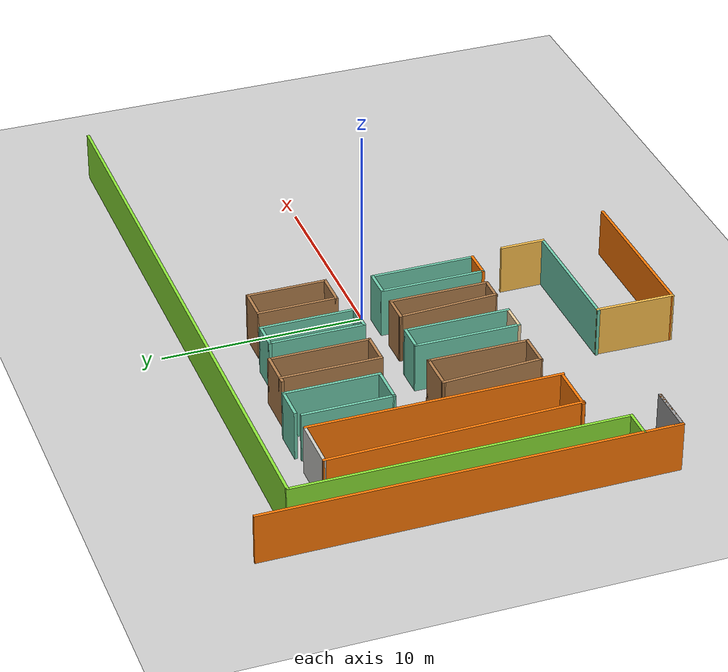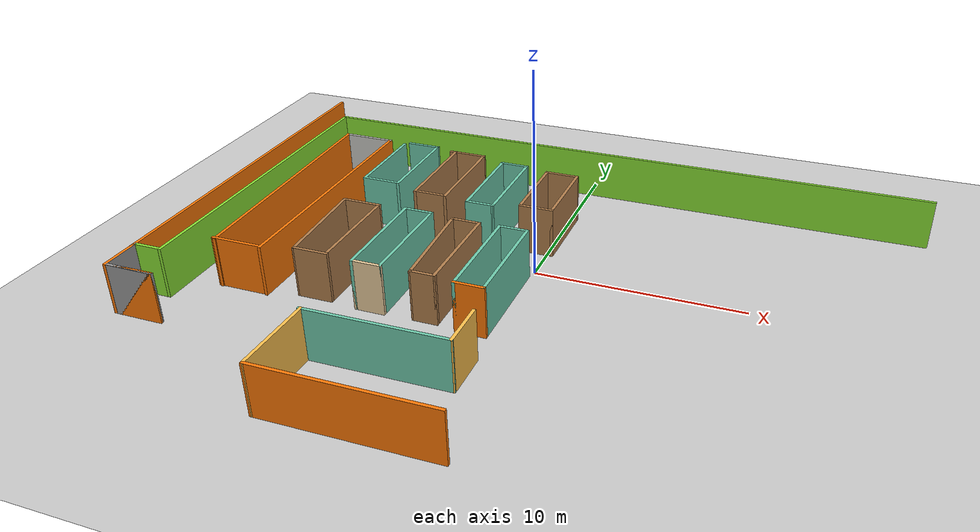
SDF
<sdf version="1.7">
 <world name="default">
  <model name="ground_plane">
   <static>1</static>
   <link name="link">
    <collision name="collision">
     <geometry><plane><normal>0 0 1</normal><size>100 100</size></plane></geometry>
     <surface>
      <contact><collide_bitmask>65535</collide_bitmask></contact>
      <friction><ode><mu>100</mu><mu2>50</mu2></ode></friction>
     </surface>
    </collision>
    <visual name="visual">
     <cast_shadows>0</cast_shadows>
     <geometry><plane><normal>0 0 1</normal><size>100 100</size></plane></geometry>
     <material>
      <script><uri>file://media/materials/scripts/gazebo.material</uri><name>Gazebo/Grey</name></script>
     </material>
    </visual>
   </link>
  </model>
  <model name="puzzle2">
   <pose>1.36187 -1.26635 0 0 -0 0</pose>
   <link name="Wall_10">
    <collision name="Wall_10_Collision">
     <geometry><box><size>32.25 0.15 2.5</size></box></geometry>
     <pose>0 0 1.25 0 -0 0</pose>
    </collision>
    <visual name="Wall_10_Visual">
     <pose>0 0 1.25 0 -0 0</pose>
     <geometry><box><size>32.25 0.15 2.5</size></box></geometry>
     <material>
      <script><uri>file://media/materials/scripts/gazebo.material</uri><name>Gazebo/Grey</name></script>
      <ambient>0.541176 0.886275 0.203922 1</ambient>
     </material>
     <meta><layer>0</layer></meta>
    </visual>
    <pose>-0.15 9.99059 0 0 -0 0</pose>
   </link>
   <link name="Wall_103">
    <collision name="Wall_103_Collision">
     <geometry><box><size>3.93847 0.15 2.5</size></box></geometry>
     <pose>0 0 1.25 0 -0 0</pose>
    </collision>
    <visual name="Wall_103_Visual">
     <pose>0 0 1.25 0 -0 0</pose>
     <geometry><box><size>3.93847 0.15 2.5</size></box></geometry>
     <material>
      <script><uri>file://media/materials/scripts/gazebo.material</uri><name>Gazebo/Grey</name></script>
      <ambient>1 0.764706 0.305882 1</ambient>
     </material>
     <meta><layer>0</layer></meta>
    </visual>
    <pose>-7.86245 -9.9954 0 0 -0 -1.58704</pose>
   </link>
   <link name="Wall_104">
    <collision name="Wall_104_Collision">
     <geometry><box><size>8.1782 0.15 2.5</size></box></geometry>
     <pose>0 0 1.25 0 -0 0</pose>
    </collision>
    <visual name="Wall_104_Visual">
     <pose>0 0 1.25 0 -0 0</pose>
     <geometry><box><size>8.1782 0.15 2.5</size></box></geometry>
     <material>
      <script><uri>file://media/materials/scripts/gazebo.material</uri><name>Gazebo/Grey</name></script>
      <ambient>0.996078 0.47451 0.0196078 1</ambient>
     </material>
     <meta><layer>0</layer></meta>
    </visual>
    <pose>-3.87921 -11.8629 0 0 -0 0.006664</pose>
   </link>
   <link name="Wall_109">
    <collision name="Wall_109_Collision">
     <geometry><box><size>2.25 0.15 2.5</size></box></geometry>
     <pose>0 0 1.25 0 -0 0</pose>
    </collision>
    <visual name="Wall_109_Visual">
     <pose>0 0 1.25 0 -0 0</pose>
     <geometry><box><size>2.25 0.15 2.5</size></box></geometry>
     <material>
      <script><uri>file://media/materials/scripts/gazebo.material</uri><name>Gazebo/Grey</name></script>
      <ambient>1 0.764706 0.305882 1</ambient>
     </material>
     <meta><layer>0</layer></meta>
    </visual>
    <pose>-1.29322 -6.98963 0 0 -0 -1.5708</pose>
   </link>
   <link name="Wall_110">
    <collision name="Wall_110_Collision">
     <geometry><box><size>6.75029 0.15 2.5</size></box></geometry>
     <pose>0 0 1.25 0 -0 0</pose>
    </collision>
    <visual name="Wall_110_Visual">
     <pose>0 0 1.25 0 -0 0</pose>
     <geometry><box><size>6.75029 0.15 2.5</size></box></geometry>
     <material>
      <script><uri>file://media/materials/scripts/gazebo.material</uri><name>Gazebo/Grey</name></script>
      <ambient>0.435294 0.796078 0.67451 1</ambient>
     </material>
     <meta><layer>0</layer></meta>
    </visual>
    <pose>-4.59322 -8.07039 0 0 -0 -3.13227</pose>
   </link>
   <link name="Wall_13">
    <collision name="Wall_13_Collision">
     <geometry><box><size>2.74904 0.15 2.5</size></box></geometry>
     <pose>0 0 1.25 0 -0 0</pose>
    </collision>
    <visual name="Wall_13_Visual">
     <pose>0 0 1.25 0 -0 0</pose>
     <geometry><box><size>2.74904 0.15 2.5</size></box></geometry>
     <material>
      <script><uri>file://media/materials/scripts/gazebo.material</uri><name>Gazebo/CeilingTiled</name></script>
      <ambient>0.996078 0.47451 0.0196078 1</ambient>
     </material>
     <meta><layer>0</layer></meta>
    </visual>
    <pose>-13.4684 7.8244 0 0 -0 0</pose>
   </link>
   <link name="Wall_14">
    <collision name="Wall_14_Collision">
     <geometry><box><size>12.4815 0.15 2.5</size></box></geometry>
     <pose>0 0 1.25 0 -0 0</pose>
    </collision>
    <visual name="Wall_14_Visual">
     <pose>0 0 1.25 0 -0 0</pose>
     <geometry><box><size>12.4815 0.15 2.5</size></box></geometry>
     <material>
      <script><uri>file://media/materials/scripts/gazebo.material</uri><name>Gazebo/Grey</name></script>
      <ambient>0.996078 0.47451 0.0196078 1</ambient>
     </material>
     <meta><layer>0</layer></meta>
    </visual>
    <pose>-12.1688 1.65864 0 0 -0 -1.5708</pose>
   </link>
   <link name="Wall_15">
    <collision name="Wall_15_Collision">
     <geometry><box><size>2.49904 0.15 2.5</size></box></geometry>
     <pose>0 0 1.25 0 -0 0</pose>
    </collision>
    <visual name="Wall_15_Visual">
     <pose>0 0 1.25 0 -0 0</pose>
     <geometry><box><size>2.49904 0.15 2.5</size></box></geometry>
     <material>
      <script><uri>file://media/materials/scripts/gazebo.material</uri><name>Gazebo/Grey</name></script>
      <ambient>0.996078 0.47451 0.0196078 1</ambient>
     </material>
     <meta><layer>0</layer></meta>
    </visual>
    <pose>-13.4504 -4.45362 0 0 -0 3.14159</pose>
   </link>
   <link name="Wall_16">
    <collision name="Wall_16_Collision">
     <geometry><box><size>12.4841 0.15 2.5</size></box></geometry>
     <pose>0 0 1.25 0 -0 0</pose>
    </collision>
    <visual name="Wall_16_Visual">
     <pose>0 0 1.25 0 -0 0</pose>
     <geometry><box><size>12.4841 0.15 2.5</size></box></geometry>
     <material>
      <script><uri>file://media/materials/scripts/gazebo.material</uri><name>Gazebo/Grey</name></script>
      <ambient>0.996078 0.47451 0.0196078 1</ambient>
     </material>
     <meta><layer>0</layer></meta>
    </visual>
    <pose>-14.6429 1.65864 0 0 -0 1.59107</pose>
   </link>
   <link name="Wall_18">
    <collision name="Wall_18_Collision">
     <geometry><box><size>4.5 0.15 2.5</size></box></geometry>
     <pose>0 0 1.25 0 -0 0</pose>
    </collision>
    <visual name="Wall_18_Visual">
     <pose>0 0 1.25 0 -0 0</pose>
     <geometry><box><size>4.5 0.15 2.5</size></box></geometry>
     <material>
      <script><uri>file://media/materials/scripts/gazebo.material</uri><name>Gazebo/Grey</name></script>
      <ambient>0.435294 0.796078 0.67451 1</ambient>
     </material>
     <meta><layer>0</layer></meta>
    </visual>
    <pose>-11.2053 5.45388 0 0 -0 -1.5708</pose>
   </link>
   <link name="Wall_19">
    <collision name="Wall_19_Collision">
     <geometry><box><size>2 0.15 2.5</size></box></geometry>
     <pose>0 0 1.25 0 -0 0</pose>
    </collision>
    <visual name="Wall_19_Visual">
     <pose>0 0 1.25 0 -0 0</pose>
     <geometry><box><size>2 0.15 2.5</size></box></geometry>
     <material>
      <script><uri>file://media/materials/scripts/gazebo.material</uri><name>Gazebo/Grey</name></script>
      <ambient>0.435294 0.796078 0.67451 1</ambient>
     </material>
     <meta><layer>0</layer></meta>
    </visual>
    <pose>-10.2803 3.27888 0 0 -0 0</pose>
   </link>
   <link name="Wall_20">
    <collision name="Wall_20_Collision">
     <geometry><box><size>4.75 0.15 2.5</size></box></geometry>
     <pose>0 0 1.25 0 -0 0</pose>
    </collision>
    <visual name="Wall_20_Visual">
     <pose>0 0 1.25 0 -0 0</pose>
     <geometry><box><size>4.75 0.15 2.5</size></box></geometry>
     <material>
      <script><uri>file://media/materials/scripts/gazebo.material</uri><name>Gazebo/Grey</name></script>
      <ambient>0.435294 0.796078 0.67451 1</ambient>
     </material>
     <meta><layer>0</layer></meta>
    </visual>
    <pose>-9.3553 5.57888 0 0 -0 1.5708</pose>
   </link>
   <link name="Wall_21">
    <collision name="Wall_21_Collision">
     <geometry><box><size>1.75 0.15 2.5</size></box></geometry>
     <pose>0 0 1.25 0 -0 0</pose>
    </collision>
    <visual name="Wall_21_Visual">
     <pose>0 0 1.25 0 -0 0</pose>
     <geometry><box><size>1.75 0.15 2.5</size></box></geometry>
     <material>
      <script><uri>file://media/materials/scripts/gazebo.material</uri><name>Gazebo/Grey</name></script>
      <ambient>0.435294 0.796078 0.67451 1</ambient>
     </material>
     <meta><layer>0</layer></meta>
    </visual>
    <pose>-10.1553 7.87888 0 0 -0 3.14159</pose>
   </link>
   <link name="Wall_23">
    <collision name="Wall_23_Collision">
     <geometry><box><size>5 0.15 2.5</size></box></geometry>
     <pose>0 0 1.25 0 -0 0</pose>
    </collision>
    <visual name="Wall_23_Visual">
     <pose>0 0 1.25 0 -0 0</pose>
     <geometry><box><size>5 0.15 2.5</size></box></geometry>
     <material>
      <script><uri>file://media/materials/scripts/gazebo.material</uri><name>Gazebo/Wood</name></script>
      <ambient>0.921569 0.807843 0.615686 1</ambient>
     </material>
     <meta><layer>0</layer></meta>
    </visual>
    <pose>-8.15565 5.20388 0 0 -0 -1.5708</pose>
   </link>
   <link name="Wall_24">
    <collision name="Wall_24_Collision">
     <geometry><box><size>1.75 0.15 2.5</size></box></geometry>
     <pose>0 0 1.25 0 -0 0</pose>
    </collision>
    <visual name="Wall_24_Visual">
     <pose>0 0 1.25 0 -0 0</pose>
     <geometry><box><size>1.75 0.15 2.5</size></box></geometry>
     <material>
      <script><uri>file://media/materials/scripts/gazebo.material</uri><name>Gazebo/Wood</name></script>
      <ambient>0.921569 0.807843 0.615686 1</ambient>
     </material>
     <meta><layer>0</layer></meta>
    </visual>
    <pose>-7.35565 2.77888 0 0 -0 0</pose>
   </link>
   <link name="Wall_25">
    <collision name="Wall_25_Collision">
     <geometry><box><size>5 0.15 2.5</size></box></geometry>
     <pose>0 0 1.25 0 -0 0</pose>
    </collision>
    <visual name="Wall_25_Visual">
     <pose>0 0 1.25 0 -0 0</pose>
     <geometry><box><size>5 0.15 2.5</size></box></geometry>
     <material>
      <script><uri>file://media/materials/scripts/gazebo.material</uri><name>Gazebo/Wood</name></script>
      <ambient>0.921569 0.807843 0.615686 1</ambient>
     </material>
     <meta><layer>0</layer></meta>
    </visual>
    <pose>-6.55565 5.20388 0 0 -0 1.5708</pose>
   </link>
   <link name="Wall_26">
    <collision name="Wall_26_Collision">
     <geometry><box><size>2 0.15 2.5</size></box></geometry>
     <pose>0 0 1.25 0 -0 0</pose>
    </collision>
    <visual name="Wall_26_Visual">
     <pose>0 0 1.25 0 -0 0</pose>
     <geometry><box><size>2 0.15 2.5</size></box></geometry>
     <material>
      <script><uri>file://media/materials/scripts/gazebo.material</uri><name>Gazebo/Wood</name></script>
      <ambient>0.921569 0.807843 0.615686 1</ambient>
     </material>
     <meta><layer>0</layer></meta>
    </visual>
    <pose>-7.48065 7.62888 0 0 -0 3.14159</pose>
   </link>
   <link name="Wall_28">
    <collision name="Wall_28_Collision">
     <geometry><box><size>4.75 0.15 2.5</size></box></geometry>
     <pose>0 0 1.25 0 -0 0</pose>
    </collision>
    <visual name="Wall_28_Visual">
     <pose>0 0 1.25 0 -0 0</pose>
     <geometry><box><size>4.75 0.15 2.5</size></box></geometry>
     <material>
      <script><uri>file://media/materials/scripts/gazebo.material</uri><name>Gazebo/Grey</name></script>
      <ambient>0.435294 0.796078 0.67451 1</ambient>
     </material>
     <meta><layer>0</layer></meta>
    </visual>
    <pose>-5.32002 4.90086 0 0 -0 -1.5708</pose>
   </link>
   <link name="Wall_29">
    <collision name="Wall_29_Collision">
     <geometry><box><size>1.5 0.15 2.5</size></box></geometry>
     <pose>0 0 1.25 0 -0 0</pose>
    </collision>
    <visual name="Wall_29_Visual">
     <pose>0 0 1.25 0 -0 0</pose>
     <geometry><box><size>1.5 0.15 2.5</size></box></geometry>
     <material>
      <script><uri>file://media/materials/scripts/gazebo.material</uri><name>Gazebo/Grey</name></script>
      <ambient>0.435294 0.796078 0.67451 1</ambient>
     </material>
     <meta><layer>0</layer></meta>
    </visual>
    <pose>-4.64502 2.60086 0 0 -0 0</pose>
   </link>
   <link name="Wall_30">
    <collision name="Wall_30_Collision">
     <geometry><box><size>4.75 0.15 2.5</size></box></geometry>
     <pose>0 0 1.25 0 -0 0</pose>
    </collision>
    <visual name="Wall_30_Visual">
     <pose>0 0 1.25 0 -0 0</pose>
     <geometry><box><size>4.75 0.15 2.5</size></box></geometry>
     <material>
      <script><uri>file://media/materials/scripts/gazebo.material</uri><name>Gazebo/Grey</name></script>
      <ambient>0.435294 0.796078 0.67451 1</ambient>
     </material>
     <meta><layer>0</layer></meta>
    </visual>
    <pose>-3.97002 4.90086 0 0 -0 1.5708</pose>
   </link>
   <link name="Wall_31">
    <collision name="Wall_31_Collision">
     <geometry><box><size>1.5 0.15 2.5</size></box></geometry>
     <pose>0 0 1.25 0 -0 0</pose>
    </collision>
    <visual name="Wall_31_Visual">
     <pose>0 0 1.25 0 -0 0</pose>
     <geometry><box><size>1.5 0.15 2.5</size></box></geometry>
     <material>
      <script><uri>file://media/materials/scripts/gazebo.material</uri><name>Gazebo/Grey</name></script>
      <ambient>0.435294 0.796078 0.67451 1</ambient>
     </material>
     <meta><layer>0</layer></meta>
    </visual>
    <pose>-4.64502 7.20086 0 0 -0 3.14159</pose>
   </link>
   <link name="Wall_33">
    <collision name="Wall_33_Collision">
     <geometry><box><size>4 0.15 2.5</size></box></geometry>
     <pose>0 0 1.25 0 -0 0</pose>
    </collision>
    <visual name="Wall_33_Visual">
     <pose>0 0 1.25 0 -0 0</pose>
     <geometry><box><size>4 0.15 2.5</size></box></geometry>
     <material>
      <script><uri>file://media/materials/scripts/gazebo.material</uri><name>Gazebo/Wood</name></script>
      <ambient>0.435294 0.796078 0.67451 1</ambient>
     </material>
     <meta><layer>0</layer></meta>
    </visual>
    <pose>-2.7519 4.99083 0 0 -0 -1.5708</pose>
   </link>
   <link name="Wall_34">
    <collision name="Wall_34_Collision">
     <geometry><box><size>1.75 0.15 2.5</size></box></geometry>
     <pose>0 0 1.25 0 -0 0</pose>
    </collision>
    <visual name="Wall_34_Visual">
     <pose>0 0 1.25 0 -0 0</pose>
     <geometry><box><size>1.75 0.15 2.5</size></box></geometry>
     <material>
      <script><uri>file://media/materials/scripts/gazebo.material</uri><name>Gazebo/Wood</name></script>
      <ambient>0.435294 0.796078 0.67451 1</ambient>
     </material>
     <meta><layer>0</layer></meta>
    </visual>
    <pose>-1.9519 3.06583 0 0 -0 0</pose>
   </link>
   <link name="Wall_35">
    <collision name="Wall_35_Collision">
     <geometry><box><size>4 0.15 2.5</size></box></geometry>
     <pose>0 0 1.25 0 -0 0</pose>
    </collision>
    <visual name="Wall_35_Visual">
     <pose>0 0 1.25 0 -0 0</pose>
     <geometry><box><size>4 0.15 2.5</size></box></geometry>
     <material>
      <script><uri>file://media/materials/scripts/gazebo.material</uri><name>Gazebo/Wood</name></script>
      <ambient>0.435294 0.796078 0.67451 1</ambient>
     </material>
     <meta><layer>0</layer></meta>
    </visual>
    <pose>-1.1519 4.99083 0 0 -0 1.5708</pose>
   </link>
   <link name="Wall_36">
    <collision name="Wall_36_Collision">
     <geometry><box><size>1.75 0.15 2.5</size></box></geometry>
     <pose>0 0 1.25 0 -0 0</pose>
    </collision>
    <visual name="Wall_36_Visual">
     <pose>0 0 1.25 0 -0 0</pose>
     <geometry><box><size>1.75 0.15 2.5</size></box></geometry>
     <material>
      <script><uri>file://media/materials/scripts/gazebo.material</uri><name>Gazebo/Wood</name></script>
      <ambient>0.435294 0.796078 0.67451 1</ambient>
     </material>
     <meta><layer>0</layer></meta>
    </visual>
    <pose>-1.9519 6.91583 0 0 -0 3.14159</pose>
   </link>
   <link name="Wall_4">
    <collision name="Wall_4_Collision">
     <geometry><box><size>20 0.15 2.5</size></box></geometry>
     <pose>0 0 1.25 0 -0 0</pose>
    </collision>
    <visual name="Wall_4_Visual">
     <pose>0 0 1.25 0 -0 0</pose>
     <geometry><box><size>20 0.15 2.5</size></box></geometry>
     <material>
      <script><uri>file://media/materials/scripts/gazebo.material</uri><name>Gazebo/Grey</name></script>
      <ambient>0.996078 0.47451 0.0196078 1</ambient>
     </material>
     <meta><layer>0</layer></meta>
    </visual>
    <pose>-17.55 1.96559 0 0 -0 -1.5708</pose>
   </link>
   <link name="Wall_5">
    <collision name="Wall_5_Collision">
     <geometry><box><size>2.5 0.15 2.5</size></box></geometry>
     <pose>0 0 1.25 0 -0 0</pose>
    </collision>
    <visual name="Wall_5_Visual">
     <pose>0 0 1.25 0 -0 0</pose>
     <geometry><box><size>2.5 0.15 2.5</size></box></geometry>
     <material>
      <script><uri>file://media/materials/scripts/gazebo.material</uri><name>Gazebo/Grey</name></script>
      <ambient>1 1 1 1</ambient>
     </material>
     <meta><layer>0</layer></meta>
    </visual>
    <pose>-16.375 -7.95941 0 0 -0 0</pose>
   </link>
   <link name="Wall_6">
    <collision name="Wall_6_Collision">
     <geometry><box><size>2.5 0.15 2.5</size></box></geometry>
     <pose>0 0 1.25 0 -0 0</pose>
    </collision>
    <visual name="Wall_6_Visual">
     <pose>0 0 1.25 0 -0 0</pose>
     <geometry><box><size>2.5 0.15 2.5</size></box></geometry>
     <material>
      <script><uri>file://media/materials/scripts/gazebo.material</uri><name>Gazebo/Grey</name></script>
      <ambient>0.996078 0.47451 0.0196078 1</ambient>
     </material>
     <meta><layer>0</layer></meta>
    </visual>
    <pose>-16.375 -7.95941 0 0 -0 3.14159</pose>
   </link>
   <link name="Wall_63">
    <collision name="Wall_63_Collision">
     <geometry><box><size>2 0.15 2.5</size></box></geometry>
     <pose>0 0 1.25 0 -0 0</pose>
    </collision>
    <visual name="Wall_63_Visual">
     <pose>0 0 1.25 0 -0 0</pose>
     <geometry><box><size>2 0.15 2.5</size></box></geometry>
     <material>
      <script><uri>file://media/materials/scripts/gazebo.material</uri><name>Gazebo/Wood</name></script>
      <ambient>0.921569 0.807843 0.615686 1</ambient>
     </material>
     <meta><layer>0</layer></meta>
    </visual>
    <pose>-10.0446 0.820382 0 0 -0 0</pose>
   </link>
   <link name="Wall_64">
    <collision name="Wall_64_Collision">
     <geometry><box><size>5 0.15 2.5</size></box></geometry>
     <pose>0 0 1.25 0 -0 0</pose>
    </collision>
    <visual name="Wall_64_Visual">
     <pose>0 0 1.25 0 -0 0</pose>
     <geometry><box><size>5 0.15 2.5</size></box></geometry>
     <material>
      <script><uri>file://media/materials/scripts/gazebo.material</uri><name>Gazebo/Wood</name></script>
      <ambient>0.921569 0.807843 0.615686 1</ambient>
     </material>
     <meta><layer>0</layer></meta>
    </visual>
    <pose>-9.11961 -1.60462 0 0 -0 -1.5708</pose>
   </link>
   <link name="Wall_65">
    <collision name="Wall_65_Collision">
     <geometry><box><size>1.75 0.15 2.5</size></box></geometry>
     <pose>0 0 1.25 0 -0 0</pose>
    </collision>
    <visual name="Wall_65_Visual">
     <pose>0 0 1.25 0 -0 0</pose>
     <geometry><box><size>1.75 0.15 2.5</size></box></geometry>
     <material>
      <script><uri>file://media/materials/scripts/gazebo.material</uri><name>Gazebo/Wood</name></script>
      <ambient>1 1 1 1</ambient>
     </material>
     <meta><layer>0</layer></meta>
    </visual>
    <pose>-9.91961 -4.02962 0 0 -0 3.14159</pose>
   </link>
   <link name="Wall_66">
    <collision name="Wall_66_Collision">
     <geometry><box><size>5.00644 0.15 2.5</size></box></geometry>
     <pose>0 0 1.25 0 -0 0</pose>
    </collision>
    <visual name="Wall_66_Visual">
     <pose>0 0 1.25 0 -0 0</pose>
     <geometry><box><size>5.00644 0.15 2.5</size></box></geometry>
     <material>
      <script><uri>file://media/materials/scripts/gazebo.material</uri><name>Gazebo/Wood</name></script>
      <ambient>0.921569 0.807843 0.615686 1</ambient>
     </material>
     <meta><layer>0</layer></meta>
    </visual>
    <pose>-10.8446 -1.60462 0 0 -0 1.6223</pose>
   </link>
   <link name="Wall_68">
    <collision name="Wall_68_Collision">
     <geometry><box><size>1.5 0.15 2.5</size></box></geometry>
     <pose>0 0 1.25 0 -0 0</pose>
    </collision>
    <visual name="Wall_68_Visual">
     <pose>0 0 1.25 0 -0 0</pose>
     <geometry><box><size>1.5 0.15 2.5</size></box></geometry>
     <material>
      <script><uri>file://media/materials/scripts/gazebo.material</uri><name>Gazebo/Grey</name></script>
      <ambient>0.435294 0.796078 0.67451 1</ambient>
     </material>
     <meta><layer>0</layer></meta>
    </visual>
    <pose>-7.09516 0.943438 0 0 -0 0</pose>
   </link>
   <link name="Wall_69">
    <collision name="Wall_69_Collision">
     <geometry><box><size>5.25 0.15 2.5</size></box></geometry>
     <pose>0 0 1.25 0 -0 0</pose>
    </collision>
    <visual name="Wall_69_Visual">
     <pose>0 0 1.25 0 -0 0</pose>
     <geometry><box><size>5.25 0.15 2.5</size></box></geometry>
     <material>
      <script><uri>file://media/materials/scripts/gazebo.material</uri><name>Gazebo/Grey</name></script>
      <ambient>0.435294 0.796078 0.67451 1</ambient>
     </material>
     <meta><layer>0</layer></meta>
    </visual>
    <pose>-6.42016 -1.60656 0 0 -0 -1.5708</pose>
   </link>
   <link name="Wall_7">
    <collision name="Wall_7_Collision">
     <geometry><box><size>2 0.15 2.5</size></box></geometry>
     <pose>0 0 1.25 0 -0 0</pose>
    </collision>
    <visual name="Wall_7_Visual">
     <pose>0 0 1.25 0 -0 0</pose>
     <geometry><box><size>2 0.15 2.5</size></box></geometry>
     <material>
      <script><uri>file://media/materials/scripts/gazebo.material</uri><name>Gazebo/Grey</name></script>
      <ambient>1 1 1 1</ambient>
     </material>
     <meta><layer>0</layer></meta>
    </visual>
    <pose>-17.55 -7.03441 0 0 -0 1.5708</pose>
   </link>
   <link name="Wall_70">
    <collision name="Wall_70_Collision">
     <geometry><box><size>1.5 0.15 2.5</size></box></geometry>
     <pose>0 0 1.25 0 -0 0</pose>
    </collision>
    <visual name="Wall_70_Visual">
     <pose>0 0 1.25 0 -0 0</pose>
     <geometry><box><size>1.5 0.15 2.5</size></box></geometry>
     <material>
      <script><uri>file://media/materials/scripts/gazebo.material</uri><name>Gazebo/Grey</name></script>
      <ambient>0.921569 0.807843 0.615686 1</ambient>
     </material>
     <meta><layer>0</layer></meta>
    </visual>
    <pose>-7.09516 -4.15656 0 0 -0 3.14159</pose>
   </link>
   <link name="Wall_71">
    <collision name="Wall_71_Collision">
     <geometry><box><size>5.25 0.15 2.5</size></box></geometry>
     <pose>0 0 1.25 0 -0 0</pose>
    </collision>
    <visual name="Wall_71_Visual">
     <pose>0 0 1.25 0 -0 0</pose>
     <geometry><box><size>5.25 0.15 2.5</size></box></geometry>
     <material>
      <script><uri>file://media/materials/scripts/gazebo.material</uri><name>Gazebo/Grey</name></script>
      <ambient>0.435294 0.796078 0.67451 1</ambient>
     </material>
     <meta><layer>0</layer></meta>
    </visual>
    <pose>-7.77016 -1.60656 0 0 -0 1.5708</pose>
   </link>
   <link name="Wall_73">
    <collision name="Wall_73_Collision">
     <geometry><box><size>1.5 0.15 2.5</size></box></geometry>
     <pose>0 0 1.25 0 -0 0</pose>
    </collision>
    <visual name="Wall_73_Visual">
     <pose>0 0 1.25 0 -0 0</pose>
     <geometry><box><size>1.5 0.15 2.5</size></box></geometry>
     <material>
      <script><uri>file://media/materials/scripts/gazebo.material</uri><name>Gazebo/Wood</name></script>
      <ambient>1 1 1 1</ambient>
     </material>
     <meta><layer>0</layer></meta>
    </visual>
    <pose>-4.57252 0.758855 0 0 -0 0</pose>
   </link>
   <link name="Wall_74">
    <collision name="Wall_74_Collision">
     <geometry><box><size>5 0.15 2.5</size></box></geometry>
     <pose>0 0 1.25 0 -0 0</pose>
    </collision>
    <visual name="Wall_74_Visual">
     <pose>0 0 1.25 0 -0 0</pose>
     <geometry><box><size>5 0.15 2.5</size></box></geometry>
     <material>
      <script><uri>file://media/materials/scripts/gazebo.material</uri><name>Gazebo/Wood</name></script>
      <ambient>0.921569 0.807843 0.615686 1</ambient>
     </material>
     <meta><layer>0</layer></meta>
    </visual>
    <pose>-3.89752 -1.66615 0 0 -0 -1.5708</pose>
   </link>
   <link name="Wall_75">
    <collision name="Wall_75_Collision">
     <geometry><box><size>1.25 0.15 2.5</size></box></geometry>
     <pose>0 0 1.25 0 -0 0</pose>
    </collision>
    <visual name="Wall_75_Visual">
     <pose>0 0 1.25 0 -0 0</pose>
     <geometry><box><size>1.25 0.15 2.5</size></box></geometry>
     <material>
      <script><uri>file://media/materials/scripts/gazebo.material</uri><name>Gazebo/Wood</name></script>
      <ambient>1 1 1 1</ambient>
     </material>
     <meta><layer>0</layer></meta>
    </visual>
    <pose>-4.44752 -4.09115 0 0 -0 3.14159</pose>
   </link>
   <link name="Wall_76">
    <collision name="Wall_76_Collision">
     <geometry><box><size>5.00644 0.15 2.5</size></box></geometry>
     <pose>0 0 1.25 0 -0 0</pose>
    </collision>
    <visual name="Wall_76_Visual">
     <pose>0 0 1.25 0 -0 0</pose>
     <geometry><box><size>5.00644 0.15 2.5</size></box></geometry>
     <material>
      <script><uri>file://media/materials/scripts/gazebo.material</uri><name>Gazebo/Wood</name></script>
      <ambient>0.921569 0.807843 0.615686 1</ambient>
     </material>
     <meta><layer>0</layer></meta>
    </visual>
    <pose>-5.12252 -1.66615 0 0 -0 1.6223</pose>
   </link>
   <link name="Wall_78">
    <collision name="Wall_78_Collision">
     <geometry><box><size>1.5 0.15 2.5</size></box></geometry>
     <pose>0 0 1.25 0 -0 0</pose>
    </collision>
    <visual name="Wall_78_Visual">
     <pose>0 0 1.25 0 -0 0</pose>
     <geometry><box><size>1.5 0.15 2.5</size></box></geometry>
     <material>
      <script><uri>file://media/materials/scripts/gazebo.material</uri><name>Gazebo/Grey</name></script>
      <ambient>0.435294 0.796078 0.67451 1</ambient>
     </material>
     <meta><layer>0</layer></meta>
    </visual>
    <pose>-2.23446 0.820382 0 0 -0 0</pose>
   </link>
   <link name="Wall_79">
    <collision name="Wall_79_Collision">
     <geometry><box><size>5.25 0.15 2.5</size></box></geometry>
     <pose>0 0 1.25 0 -0 0</pose>
    </collision>
    <visual name="Wall_79_Visual">
     <pose>0 0 1.25 0 -0 0</pose>
     <geometry><box><size>5.25 0.15 2.5</size></box></geometry>
     <material>
      <script><uri>file://media/materials/scripts/gazebo.material</uri><name>Gazebo/Grey</name></script>
      <ambient>0.435294 0.796078 0.67451 1</ambient>
     </material>
     <meta><layer>0</layer></meta>
    </visual>
    <pose>-1.55946 -1.72962 0 0 -0 -1.5708</pose>
   </link>
   <link name="Wall_8">
    <collision name="Wall_8_Collision">
     <geometry><box><size>1.5 0.15 2.5</size></box></geometry>
     <pose>0 0 1.25 0 -0 0</pose>
    </collision>
    <visual name="Wall_8_Visual">
     <pose>0 0 1.25 0 -0 0</pose>
     <geometry><box><size>1.5 0.15 2.5</size></box></geometry>
     <material>
      <script><uri>file://media/materials/scripts/gazebo.material</uri><name>Gazebo/Grey</name></script>
      <ambient>0.541176 0.886275 0.203922 1</ambient>
     </material>
     <meta><layer>0</layer></meta>
    </visual>
    <pose>-16.875 -6.10941 0 0 -0 0</pose>
   </link>
   <link name="Wall_80">
    <collision name="Wall_80_Collision">
     <geometry><box><size>1.5 0.15 2.5</size></box></geometry>
     <pose>0 0 1.25 0 -0 0</pose>
    </collision>
    <visual name="Wall_80_Visual">
     <pose>0 0 1.25 0 -0 0</pose>
     <geometry><box><size>1.5 0.15 2.5</size></box></geometry>
     <material>
      <script><uri>file://media/materials/scripts/gazebo.material</uri><name>Gazebo/Grey</name></script>
      <ambient>0.996078 0.47451 0.0196078 1</ambient>
     </material>
     <meta><layer>0</layer></meta>
    </visual>
    <pose>-2.23446 -4.27962 0 0 -0 3.14159</pose>
   </link>
   <link name="Wall_81">
    <collision name="Wall_81_Collision">
     <geometry><box><size>5.25 0.15 2.5</size></box></geometry>
     <pose>0 0 1.25 0 -0 0</pose>
    </collision>
    <visual name="Wall_81_Visual">
     <pose>0 0 1.25 0 -0 0</pose>
     <geometry><box><size>5.25 0.15 2.5</size></box></geometry>
     <material>
      <script><uri>file://media/materials/scripts/gazebo.material</uri><name>Gazebo/Grey</name></script>
      <ambient>0.435294 0.796078 0.67451 1</ambient>
     </material>
     <meta><layer>0</layer></meta>
    </visual>
    <pose>-2.90946 -1.72962 0 0 -0 1.5708</pose>
   </link>
   <link name="Wall_9">
    <collision name="Wall_9_Collision">
     <geometry><box><size>16.25 0.15 2.5</size></box></geometry>
     <pose>0 0 1.25 0 -0 0</pose>
    </collision>
    <visual name="Wall_9_Visual">
     <pose>0 0 1.25 0 -0 0</pose>
     <geometry><box><size>16.25 0.15 2.5</size></box></geometry>
     <material>
      <script><uri>file://media/materials/scripts/gazebo.material</uri><name>Gazebo/Grey</name></script>
      <ambient>0.541176 0.886275 0.203922 1</ambient>
     </material>
     <meta><layer>0</layer></meta>
    </visual>
    <pose>-16.2 1.94059 0 0 -0 1.5708</pose>
   </link>
   <static>1</static>
  </model>
 </world>
</sdf>
